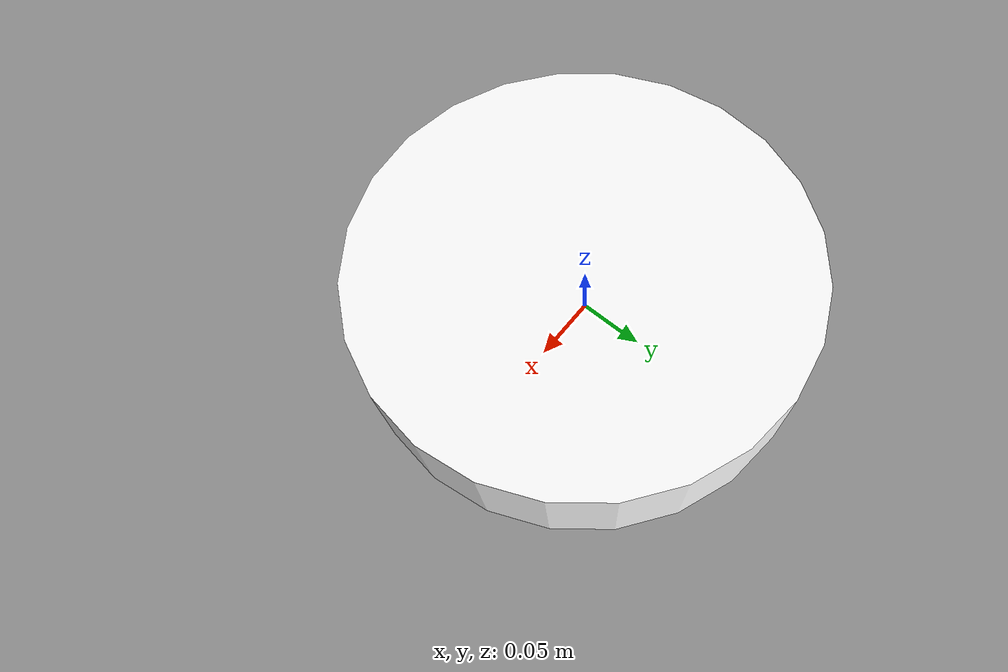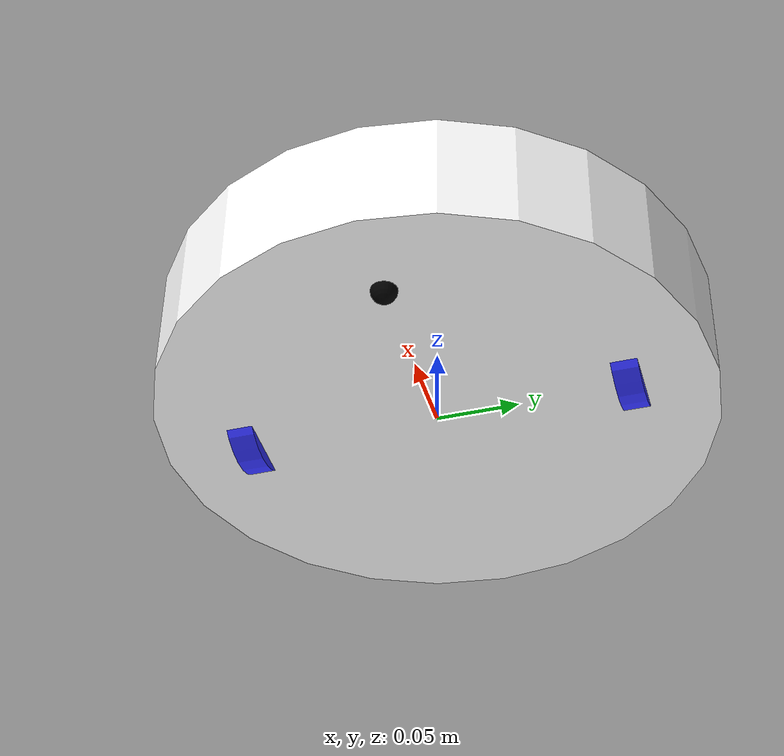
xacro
<?xml version="1.0"?>
<robot xmlns:xacro="http://www.ros.org/wiki/xacro">

  <xacro:include filename="inertial_macros.xacro" />
  <xacro:include filename="materials_macros.xacro" />

  <!-- BASE LINK-->
  <link name="base_link"></link>

  <!-- BASE FOOTPRINT LINK-->
  <joint name="base_footprint_joint" type="fixed">
    <parent link="base_link" />
    <child link="base_footprint" />
    <origin xyz="0.0 0.0 0.0" rpy="0.0 0.0 0.0" />
  </joint>

  <link name="base_footprint" />

  <!-- CHASSI LINK-->
  <joint name="chassis_joint" type="fixed">
    <parent link="base_link" />
    <child link="chassis" />
    <origin xyz="-0.17 0.0 0.0" />
  </joint>

  <link name="chassis">
    <visual>
      <origin xyz="0.17 0.0 0.0375" />
      <geometry>
        <cylinder radius="0.17" length="0.075" />
      </geometry>
      <xacro:material_white />
    </visual>

    <collision>
      <origin xyz="0.17 0.0 0.0375" />
      <geometry>
        <cylinder radius="0.17" length="0.075" />
      </geometry>
    </collision>

    <xacro:inertial_cylinder mass="0.7" radius="0.17" length="0.075">
      <origin xyz="0.17 0.0 0.0375" rpy="0.0 0.0 0.0" />
    </xacro:inertial_cylinder>
  </link>

  <xacro:gazebo_material_white reference="chassis" />

  <!-- LEFT WHEEL LINK-->
  <joint name="left_wheel_joint" type="continuous">
    <parent link="base_link" />
    <child link="left_wheel" />
    <origin xyz="0.0 0.1175 0.028" rpy="-${pi/2} 0.0 0.0" />
    <axis xyz="0.0 0.0 1" />
  </joint>

  <link name="left_wheel">
    <visual>
      <geometry>
        <cylinder radius="0.036" length="0.016" />
      </geometry>
      <xacro:material_blue />
    </visual>

    <collision>
      <geometry>
        <sphere radius="0.036" />
      </geometry>
    </collision>

    <xacro:inertial_cylinder mass="0.6" radius="0.036" length="0.016">
      <origin xyz="0.0 0.0 0.0" rpy="0.0 0.0 0.0" />
    </xacro:inertial_cylinder>
  </link>

  <xacro:gazebo_material_blue reference="left_wheel" />

  <!--RIGHT
  WHEEL LINK -->
  <joint name="right_wheel_joint" type="continuous">
    <parent link="base_link" />
    <child link="right_wheel" />
    <origin xyz="0.0 -0.1175 0.028" rpy="${pi/2} 0.0 0.0" />
    <axis xyz="0.0 0.0 -1" />
  </joint>

  <link name="right_wheel">
    <visual>
      <geometry>
        <cylinder radius="0.036" length="0.016" />
      </geometry>
      <xacro:material_blue />

    </visual>
    <collision>
      <geometry>
        <sphere radius="0.036" />
      </geometry>
    </collision>

    <xacro:inertial_cylinder mass="0.6" radius="0.036" length="0.016">
      <origin xyz="0.0 0.0 0.0" rpy="0.0 0.0 0.0" />
    </xacro:inertial_cylinder>
  </link>

  <xacro:gazebo_material_blue reference="right_wheel" />

  <!-- CASTER WHEEL LINK-->
  <joint name="caster_wheel_link" type="fixed">
    <parent link="chassis" />
    <child link="caster_wheel" />
    <origin xyz="0.284 0.0 0.0" />
  </joint>

  <link name="caster_wheel">
    <visual>
      <geometry>
        <sphere radius="0.008" />
      </geometry>
      <xacro:material_black />
    </visual>

    <collision>
      <geometry>
        <sphere radius="0.008" />
      </geometry>
    </collision>

    <xacro:inertial_sphere mass="1.6" radius="0.008">
      <origin xyz="0.0 0.0 0.0" rpy="0.0 0.0 0.0" />
    </xacro:inertial_sphere>
  </link>

  <xacro:gazebo_material_black reference="caster_wheel" />

  <gazebo reference="caster_wheel">
    <mu1 value="0.001" />
    <mu2 value="0.001" />
  </gazebo>

</robot>

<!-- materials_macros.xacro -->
<robot xmlns:xacro="http://www.ros.org/wiki/xacro">
  <xacro:macro name="material_white">
    <material name="white">
      <color rgba="1 1 1 1" />
    </material>
  </xacro:macro>

  <xacro:macro name="material_orange">
    <material name="orange">
      <color rgba="1 0.3 0.1 1" />
    </material>
  </xacro:macro>

  <xacro:macro name="material_blue">
    <material name="blue">
      <color rgba="0.2 0.2 1 1" />
    </material>
  </xacro:macro>

  <xacro:macro name="material_black">
    <material name="black">
      <color rgba="0 0 0 1" />
    </material>
  </xacro:macro>

  <xacro:macro name="material_red">
    <material name="red">
      <color rgba="1 0 0 1" />
    </material>
  </xacro:macro>

  <xacro:macro name="gazebo_material_white" params="reference">
    <gazebo reference="${reference}">
      <material>Gazebo/White</material>
    </gazebo>
  </xacro:macro>

  <xacro:macro name="gazebo_material_blue" params="reference">
    <gazebo reference="${reference}">
      <material>Gazebo/Blue</material>
    </gazebo>

  </xacro:macro>

  <xacro:macro name="gazebo_material_black" params="reference">
    <gazebo reference="${reference}">
      <material>Gazebo/Black</material>
    </gazebo>
  </xacro:macro>

  <xacro:macro name="gazebo_material_red" params="reference">
    <gazebo reference="${reference}">
      <material>Gazebo/Red</material>
    </gazebo>
  </xacro:macro>
</robot>
